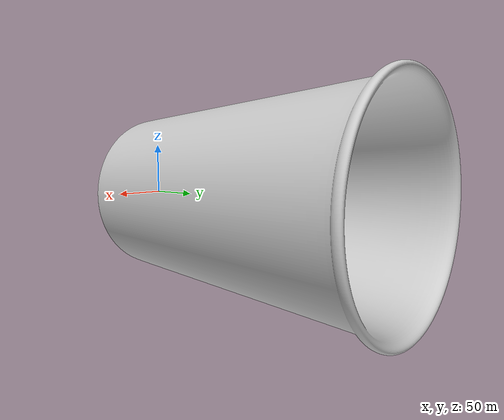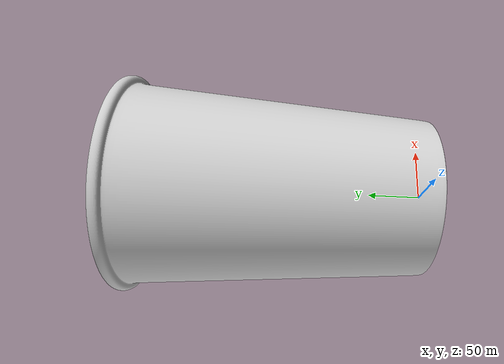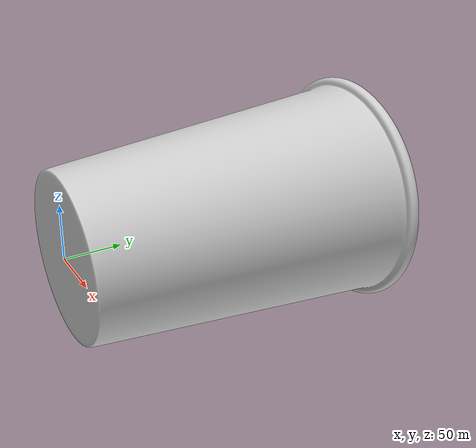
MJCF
<mujoco model="cup_test">
    <compiler angle="radian" />
    <option timestep="0.01" gravity="0 0 -9.81" />

    <asset>
        <mesh name="test_cup" file="/Users/brunohawkins/PycharmProjects/FinalYearResearchProjectUCL/Project_files/robotics_stuff/test_cup.obj" />
        <material name="plastic" rgba="0.8 0.8 0.8 1" />
    </asset>

    <worldbody>
        <body name="cup" pos="0 0 0.1">
            <geom type="mesh" mesh="test_cup" mass="0.24" material="plastic" />
        </body>
        <camera name="cup_camera" pos="0 150 750" xyaxes="1 0 0 0 1 0" />
    </worldbody>
</mujoco>
